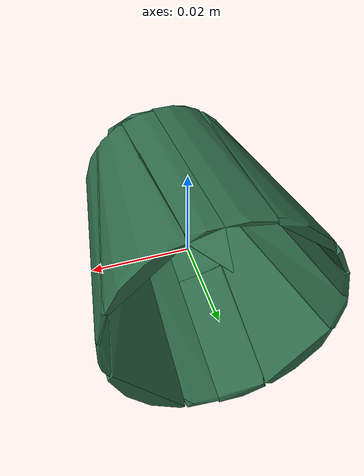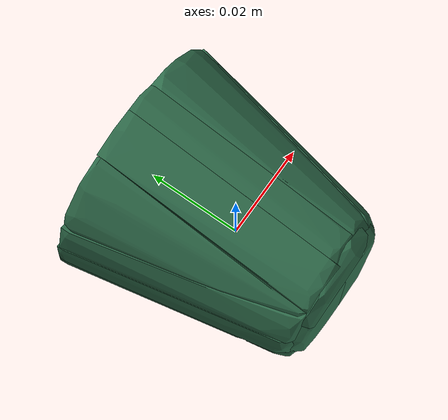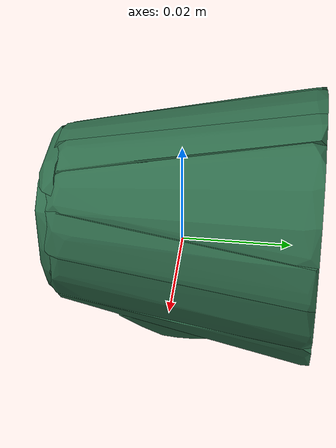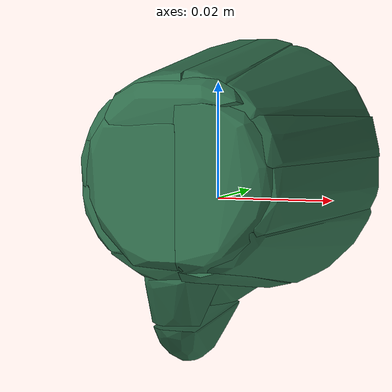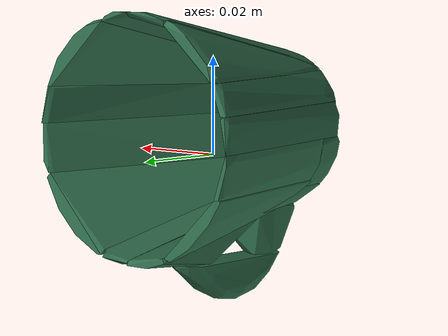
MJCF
<mujoco model="shapenet9-13">
  <asset>
    <mesh file="meshes/shapenet9-13/shapenet9-13_0.stl" name="shapenet9-13_0" scale="0.09 0.09 0.09"/>
    <mesh file="meshes/shapenet9-13/shapenet9-13_1.stl" name="shapenet9-13_1" scale="0.09 0.09 0.09"/>
    <mesh file="meshes/shapenet9-13/shapenet9-13_2.stl" name="shapenet9-13_2" scale="0.09 0.09 0.09"/>
    <mesh file="meshes/shapenet9-13/shapenet9-13_3.stl" name="shapenet9-13_3" scale="0.09 0.09 0.09"/>
    <mesh file="meshes/shapenet9-13/shapenet9-13_4.stl" name="shapenet9-13_4" scale="0.09 0.09 0.09"/>
    <mesh file="meshes/shapenet9-13/shapenet9-13_5.stl" name="shapenet9-13_5" scale="0.09 0.09 0.09"/>
    <mesh file="meshes/shapenet9-13/shapenet9-13_6.stl" name="shapenet9-13_6" scale="0.09 0.09 0.09"/>
    <mesh file="meshes/shapenet9-13/shapenet9-13_7.stl" name="shapenet9-13_7" scale="0.09 0.09 0.09"/>
    <mesh file="meshes/shapenet9-13/shapenet9-13_8.stl" name="shapenet9-13_8" scale="0.09 0.09 0.09"/>
    <mesh file="meshes/shapenet9-13/shapenet9-13_9.stl" name="shapenet9-13_9" scale="0.09 0.09 0.09"/>
    <mesh file="meshes/shapenet9-13/shapenet9-13_10.stl" name="shapenet9-13_10" scale="0.09 0.09 0.09"/>
    <mesh file="meshes/shapenet9-13/shapenet9-13_11.stl" name="shapenet9-13_11" scale="0.09 0.09 0.09"/>
    <mesh file="meshes/shapenet9-13/shapenet9-13_12.stl" name="shapenet9-13_12" scale="0.09 0.09 0.09"/>
    <mesh file="meshes/shapenet9-13/shapenet9-13_13.stl" name="shapenet9-13_13" scale="0.09 0.09 0.09"/>
    <mesh file="meshes/shapenet9-13/shapenet9-13_14.stl" name="shapenet9-13_14" scale="0.09 0.09 0.09"/>
    <mesh file="meshes/shapenet9-13/shapenet9-13_15.stl" name="shapenet9-13_15" scale="0.09 0.09 0.09"/>
    <mesh file="meshes/shapenet9-13/shapenet9-13_16.stl" name="shapenet9-13_16" scale="0.09 0.09 0.09"/>
    <mesh file="meshes/shapenet9-13/shapenet9-13_17.stl" name="shapenet9-13_17" scale="0.09 0.09 0.09"/>
    <mesh file="meshes/shapenet9-13/shapenet9-13_18.stl" name="shapenet9-13_18" scale="0.09 0.09 0.09"/>
    <mesh file="meshes/shapenet9-13/shapenet9-13_19.stl" name="shapenet9-13_19" scale="0.09 0.09 0.09"/>
  </asset>
  <worldbody>
    <body>
      <body name="collision">
        <geom pos="0 0 0" mesh="shapenet9-13_0" type="mesh" solimp="0.998 0.998 0.001" solref="0.001 1" density="100" friction="0.95 0.3 0.1" rgba="0.184 0.424 0.294 1" group="1" condim="4"/>
        <geom pos="0 0 0" mesh="shapenet9-13_1" type="mesh" solimp="0.998 0.998 0.001" solref="0.001 1" density="100" friction="0.95 0.3 0.1" rgba="0.184 0.424 0.294 1" group="1" condim="4"/>
        <geom pos="0 0 0" mesh="shapenet9-13_2" type="mesh" solimp="0.998 0.998 0.001" solref="0.001 1" density="100" friction="0.95 0.3 0.1" rgba="0.184 0.424 0.294 1" group="1" condim="4"/>
        <geom pos="0 0 0" mesh="shapenet9-13_3" type="mesh" solimp="0.998 0.998 0.001" solref="0.001 1" density="100" friction="0.95 0.3 0.1" rgba="0.184 0.424 0.294 1" group="1" condim="4"/>
        <geom pos="0 0 0" mesh="shapenet9-13_4" type="mesh" solimp="0.998 0.998 0.001" solref="0.001 1" density="100" friction="0.95 0.3 0.1" rgba="0.184 0.424 0.294 1" group="1" condim="4"/>
        <geom pos="0 0 0" mesh="shapenet9-13_5" type="mesh" solimp="0.998 0.998 0.001" solref="0.001 1" density="100" friction="0.95 0.3 0.1" rgba="0.184 0.424 0.294 1" group="1" condim="4"/>
        <geom pos="0 0 0" mesh="shapenet9-13_6" type="mesh" solimp="0.998 0.998 0.001" solref="0.001 1" density="100" friction="0.95 0.3 0.1" rgba="0.184 0.424 0.294 1" group="1" condim="4"/>
        <geom pos="0 0 0" mesh="shapenet9-13_7" type="mesh" solimp="0.998 0.998 0.001" solref="0.001 1" density="100" friction="0.95 0.3 0.1" rgba="0.184 0.424 0.294 1" group="1" condim="4"/>
        <geom pos="0 0 0" mesh="shapenet9-13_8" type="mesh" solimp="0.998 0.998 0.001" solref="0.001 1" density="100" friction="0.95 0.3 0.1" rgba="0.184 0.424 0.294 1" group="1" condim="4"/>
        <geom pos="0 0 0" mesh="shapenet9-13_9" type="mesh" solimp="0.998 0.998 0.001" solref="0.001 1" density="100" friction="0.95 0.3 0.1" rgba="0.184 0.424 0.294 1" group="1" condim="4"/>
        <geom pos="0 0 0" mesh="shapenet9-13_10" type="mesh" solimp="0.998 0.998 0.001" solref="0.001 1" density="100" friction="0.95 0.3 0.1" rgba="0.184 0.424 0.294 1" group="1" condim="4"/>
        <geom pos="0 0 0" mesh="shapenet9-13_11" type="mesh" solimp="0.998 0.998 0.001" solref="0.001 1" density="100" friction="0.95 0.3 0.1" rgba="0.184 0.424 0.294 1" group="1" condim="4"/>
        <geom pos="0 0 0" mesh="shapenet9-13_12" type="mesh" solimp="0.998 0.998 0.001" solref="0.001 1" density="100" friction="0.95 0.3 0.1" rgba="0.184 0.424 0.294 1" group="1" condim="4"/>
        <geom pos="0 0 0" mesh="shapenet9-13_13" type="mesh" solimp="0.998 0.998 0.001" solref="0.001 1" density="100" friction="0.95 0.3 0.1" rgba="0.184 0.424 0.294 1" group="1" condim="4"/>
        <geom pos="0 0 0" mesh="shapenet9-13_14" type="mesh" solimp="0.998 0.998 0.001" solref="0.001 1" density="100" friction="0.95 0.3 0.1" rgba="0.184 0.424 0.294 1" group="1" condim="4"/>
        <geom pos="0 0 0" mesh="shapenet9-13_15" type="mesh" solimp="0.998 0.998 0.001" solref="0.001 1" density="100" friction="0.95 0.3 0.1" rgba="0.184 0.424 0.294 1" group="1" condim="4"/>
        <geom pos="0 0 0" mesh="shapenet9-13_16" type="mesh" solimp="0.998 0.998 0.001" solref="0.001 1" density="100" friction="0.95 0.3 0.1" rgba="0.184 0.424 0.294 1" group="1" condim="4"/>
        <geom pos="0 0 0" mesh="shapenet9-13_17" type="mesh" solimp="0.998 0.998 0.001" solref="0.001 1" density="100" friction="0.95 0.3 0.1" rgba="0.184 0.424 0.294 1" group="1" condim="4"/>
        <geom pos="0 0 0" mesh="shapenet9-13_18" type="mesh" solimp="0.998 0.998 0.001" solref="0.001 1" density="100" friction="0.95 0.3 0.1" rgba="0.184 0.424 0.294 1" group="1" condim="4"/>
        <geom pos="0 0 0" mesh="shapenet9-13_19" type="mesh" solimp="0.998 0.998 0.001" solref="0.001 1" density="100" friction="0.95 0.3 0.1" rgba="0.184 0.424 0.294 1" group="1" condim="4"/>
      </body>
      <body name="visual">
        <geom pos="0 0 0" mesh="shapenet9-13_0" type="mesh" rgba="0.184 0.424 0.294 1" conaffinity="0" contype="0" group="0" mass="0.0001"/>
        <geom pos="0 0 0" mesh="shapenet9-13_1" type="mesh" rgba="0.184 0.424 0.294 1" conaffinity="0" contype="0" group="0" mass="0.0001"/>
        <geom pos="0 0 0" mesh="shapenet9-13_2" type="mesh" rgba="0.184 0.424 0.294 1" conaffinity="0" contype="0" group="0" mass="0.0001"/>
        <geom pos="0 0 0" mesh="shapenet9-13_3" type="mesh" rgba="0.184 0.424 0.294 1" conaffinity="0" contype="0" group="0" mass="0.0001"/>
        <geom pos="0 0 0" mesh="shapenet9-13_4" type="mesh" rgba="0.184 0.424 0.294 1" conaffinity="0" contype="0" group="0" mass="0.0001"/>
        <geom pos="0 0 0" mesh="shapenet9-13_5" type="mesh" rgba="0.184 0.424 0.294 1" conaffinity="0" contype="0" group="0" mass="0.0001"/>
        <geom pos="0 0 0" mesh="shapenet9-13_6" type="mesh" rgba="0.184 0.424 0.294 1" conaffinity="0" contype="0" group="0" mass="0.0001"/>
        <geom pos="0 0 0" mesh="shapenet9-13_7" type="mesh" rgba="0.184 0.424 0.294 1" conaffinity="0" contype="0" group="0" mass="0.0001"/>
        <geom pos="0 0 0" mesh="shapenet9-13_8" type="mesh" rgba="0.184 0.424 0.294 1" conaffinity="0" contype="0" group="0" mass="0.0001"/>
        <geom pos="0 0 0" mesh="shapenet9-13_9" type="mesh" rgba="0.184 0.424 0.294 1" conaffinity="0" contype="0" group="0" mass="0.0001"/>
        <geom pos="0 0 0" mesh="shapenet9-13_10" type="mesh" rgba="0.184 0.424 0.294 1" conaffinity="0" contype="0" group="0" mass="0.0001"/>
        <geom pos="0 0 0" mesh="shapenet9-13_11" type="mesh" rgba="0.184 0.424 0.294 1" conaffinity="0" contype="0" group="0" mass="0.0001"/>
        <geom pos="0 0 0" mesh="shapenet9-13_12" type="mesh" rgba="0.184 0.424 0.294 1" conaffinity="0" contype="0" group="0" mass="0.0001"/>
        <geom pos="0 0 0" mesh="shapenet9-13_13" type="mesh" rgba="0.184 0.424 0.294 1" conaffinity="0" contype="0" group="0" mass="0.0001"/>
        <geom pos="0 0 0" mesh="shapenet9-13_14" type="mesh" rgba="0.184 0.424 0.294 1" conaffinity="0" contype="0" group="0" mass="0.0001"/>
        <geom pos="0 0 0" mesh="shapenet9-13_15" type="mesh" rgba="0.184 0.424 0.294 1" conaffinity="0" contype="0" group="0" mass="0.0001"/>
        <geom pos="0 0 0" mesh="shapenet9-13_16" type="mesh" rgba="0.184 0.424 0.294 1" conaffinity="0" contype="0" group="0" mass="0.0001"/>
        <geom pos="0 0 0" mesh="shapenet9-13_17" type="mesh" rgba="0.184 0.424 0.294 1" conaffinity="0" contype="0" group="0" mass="0.0001"/>
        <geom pos="0 0 0" mesh="shapenet9-13_18" type="mesh" rgba="0.184 0.424 0.294 1" conaffinity="0" contype="0" group="0" mass="0.0001"/>
        <geom pos="0 0 0" mesh="shapenet9-13_19" type="mesh" rgba="0.184 0.424 0.294 1" conaffinity="0" contype="0" group="0" mass="0.0001"/>
      </body>
      <site rgba="0 0 0 0" size="0.005" pos="0 0 -0.06" name="bottom_site"/>
      <site rgba="0 0 0 0" size="0.005" pos="0 0 0.04" name="top_site"/>
      <site rgba="0 0 0 0" size="0.005" pos="0.025 0.025 0" name="horizontal_radius_site"/>
    </body>
  </worldbody>
</mujoco>
